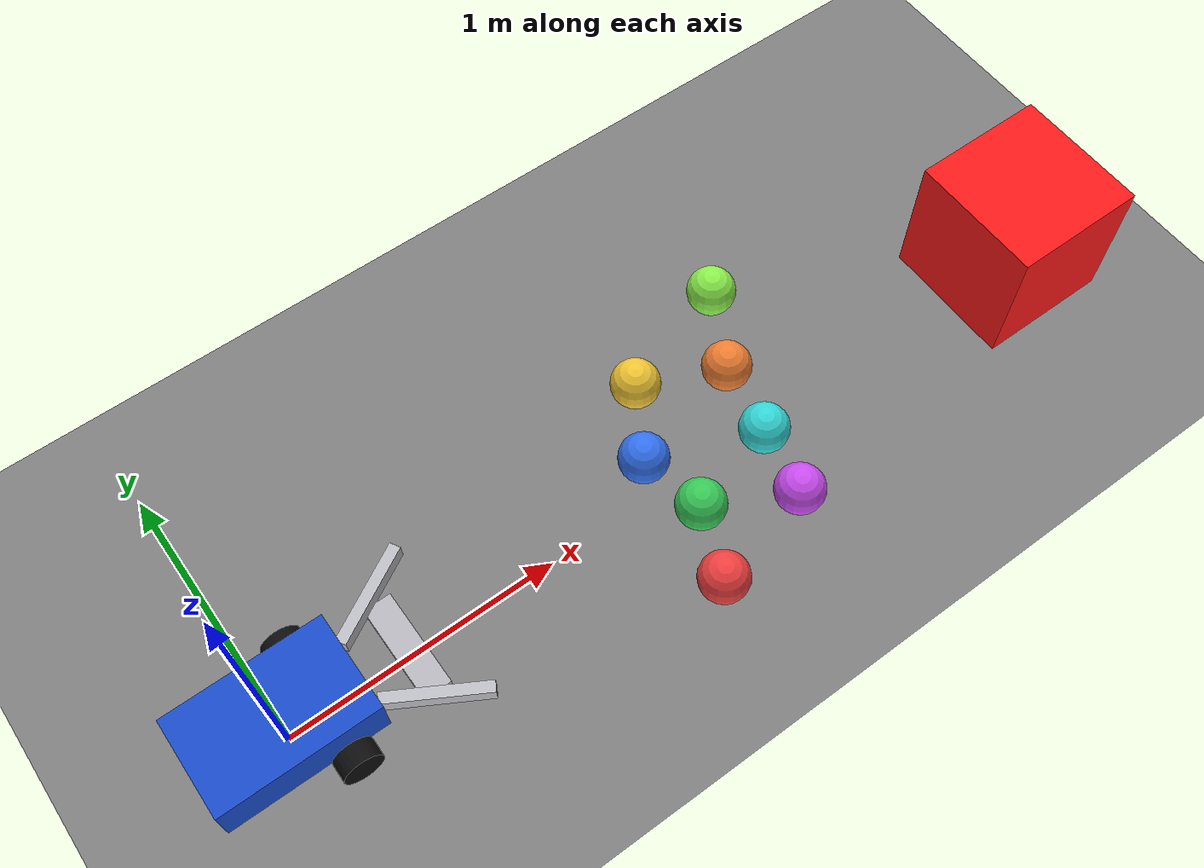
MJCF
<mujoco model="two_wheel_camera_bot">
  <compiler angle="degree" coordinate="local"/>
  <option timestep="0.005" gravity="0 0 -9.81"/>

  <visual>
    <global offwidth="1280" offheight="960"/>
    <rgba haze="0 0 0 0"/>
  </visual>

  <asset>
    <texture name="grid" type="2d" builtin="checker"
             width="512" height="512"
             rgb1="0.2 0.2 0.2" rgb2="0.8 0.8 0.8"/>
    <material name="gridmat" texture="grid" texrepeat="8 8" reflectance="0.2"/>
  </asset>

  <worldbody>
    <light pos="0 0 5.5" dir="0 0 -1" diffuse="0.32 0.32 0.32" ambient="0.12 0.12 0.12"/>
    <light pos="5 -4 6" dir="-0.9 0.2 -1" diffuse="0.2 0.2 0.2"/>
    <light pos="-5 4 6" dir="0.9 -0.2 -1" diffuse="0.2 0.2 0.2"/>
    <light pos="5 4 6" dir="-0.7 -0.7 -1" diffuse="0.16 0.16 0.16"/>
    <light pos="-5 -4 6" dir="0.7 0.7 -1" diffuse="0.16 0.16 0.16"/>

    <geom name="floor" type="plane" size="20 20 0.1"
          material="gridmat" friction="1.2 0.1 0.1"/>

    <!-- Omniscient fixed camera for debugging / viewing rollout -->
    <camera name="omniscient_cam"
            pos="-4.2 -5.0 5.4"
            xyaxes="0.77 -0.64 0 0.34 0.41 0.84"
            fovy="75"/>

    <geom name="red_box" type="box" pos="3 0 0.25" size="0.25 0.25 0.25"
          rgba="1 0.1 0.1 1"/>

    <body name="bot" pos="0 0 0.18">
      <freejoint/>

      <geom name="chassis" type="box" size="0.28 0.18 0.08"
            mass="4.0" rgba="0.1 0.3 0.8 1"/>

      <!-- Simple V-plow on the robot front -->
      <geom name="plow_left" type="box"
            pos="0.44 0.20 -0.05"
            size="0.18 0.02 0.03"
            euler="0 0 30"
            mass="0.08"
            rgba="0.75 0.75 0.78 1"/>
      <geom name="plow_right" type="box"
            pos="0.44 -0.20 -0.05"
            size="0.18 0.02 0.03"
            euler="0 0 -30"
            mass="0.08"
            rgba="0.75 0.75 0.78 1"/>

      <!-- Low front bumper prevents spheres from rolling under and lifting the chassis -->
      <geom name="front_bumper" type="box"
            pos="0.45 0 -0.085"
            size="0.05 0.18 0.012"
            mass="0.05"
            rgba="0.72 0.72 0.75 1"/>

      <!-- Robot POV camera -->
    <camera name="front_cam"
            pos="0.16 0 0.24"
            xyaxes="0 -1 0 0.22 0 0.98"
            fovy="90"/>

        <body name="left_wheel" pos="0.14 0.22 -0.08">
        <joint name="left_wheel_joint" type="hinge"
                axis="0 1 0"
                damping="0.01"/>
        <geom name="left_wheel_geom" type="cylinder"
                size="0.07 0.035"
                mass="0.4"
                rgba="0.05 0.05 0.05 1"
                friction="2.0 0.1 0.1"
                euler="90 0 0"/>
        </body>

        <body name="right_wheel" pos="0.14 -0.22 -0.08">
        <joint name="right_wheel_joint" type="hinge"
                axis="0 1 0"
                damping="0.01"/>
        <geom name="right_wheel_geom" type="cylinder"
                size="0.07 0.035"
                mass="0.4"
                rgba="0.05 0.05 0.05 1"
                friction="2.0 0.1 0.1"
                euler="90 0 0"/>
        </body>

      <body name="rear_coaster" pos="-0.22 0 -0.10">
        <geom name="coaster_ball" type="sphere"
              size="0.045"
              mass="0.15"
              rgba="0.8 0.8 0.8 1"
              friction="0.3 0.02 0.02"/>
      </body>
    </body>

    <body name="sphere_01" pos="1.4 -0.4 0.09">
      <freejoint/>
      <geom type="sphere" size="0.09" mass="0.4" rgba="0.95 0.25 0.25 1" friction="0.8 0.03 0.03"/>
    </body>
    <body name="sphere_02" pos="1.5 -0.15 0.09">
      <freejoint/>
      <geom type="sphere" size="0.09" mass="0.4" rgba="0.22 0.8 0.35 1" friction="0.8 0.03 0.03"/>
    </body>
    <body name="sphere_03" pos="1.45 0.1 0.09">
      <freejoint/>
      <geom type="sphere" size="0.09" mass="0.4" rgba="0.2 0.45 0.95 1" friction="0.8 0.03 0.03"/>
    </body>
    <body name="sphere_04" pos="1.6 0.35 0.09">
      <freejoint/>
      <geom type="sphere" size="0.09" mass="0.4" rgba="0.95 0.78 0.2 1" friction="0.8 0.03 0.03"/>
    </body>
    <body name="sphere_05" pos="1.8 -0.3 0.09">
      <freejoint/>
      <geom type="sphere" size="0.09" mass="0.4" rgba="0.8 0.3 0.95 1" friction="0.8 0.03 0.03"/>
    </body>
    <body name="sphere_06" pos="1.85 -0.05 0.09">
      <freejoint/>
      <geom type="sphere" size="0.09" mass="0.4" rgba="0.2 0.85 0.85 1" friction="0.8 0.03 0.03"/>
    </body>
    <body name="sphere_07" pos="1.9 0.22 0.09">
      <freejoint/>
      <geom type="sphere" size="0.09" mass="0.4" rgba="0.95 0.5 0.2 1" friction="0.8 0.03 0.03"/>
    </body>
    <body name="sphere_08" pos="2.05 0.5 0.09">
      <freejoint/>
      <geom type="sphere" size="0.09" mass="0.4" rgba="0.55 0.95 0.3 1" friction="0.8 0.03 0.03"/>
    </body>
  </worldbody>

  <actuator>
    <motor name="left_motor" joint="left_wheel_joint" gear="1" ctrllimited="true" ctrlrange="-5 5"/>
    <motor name="right_motor" joint="right_wheel_joint" gear="1" ctrllimited="true" ctrlrange="-5 5"/>
  </actuator>
</mujoco>
